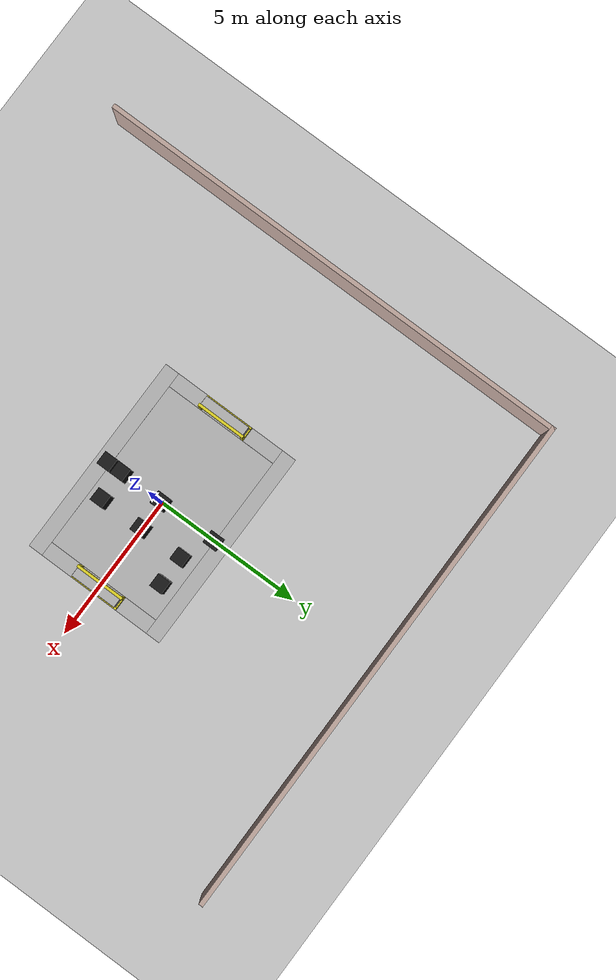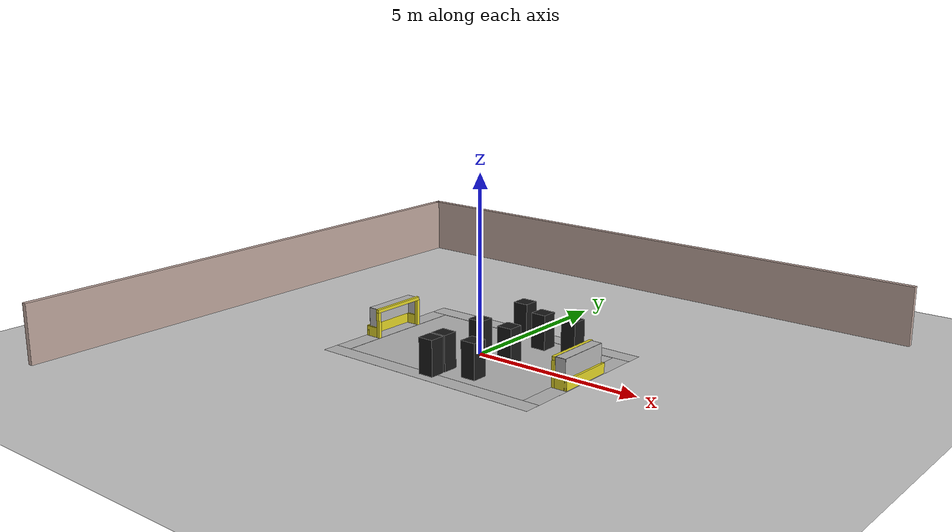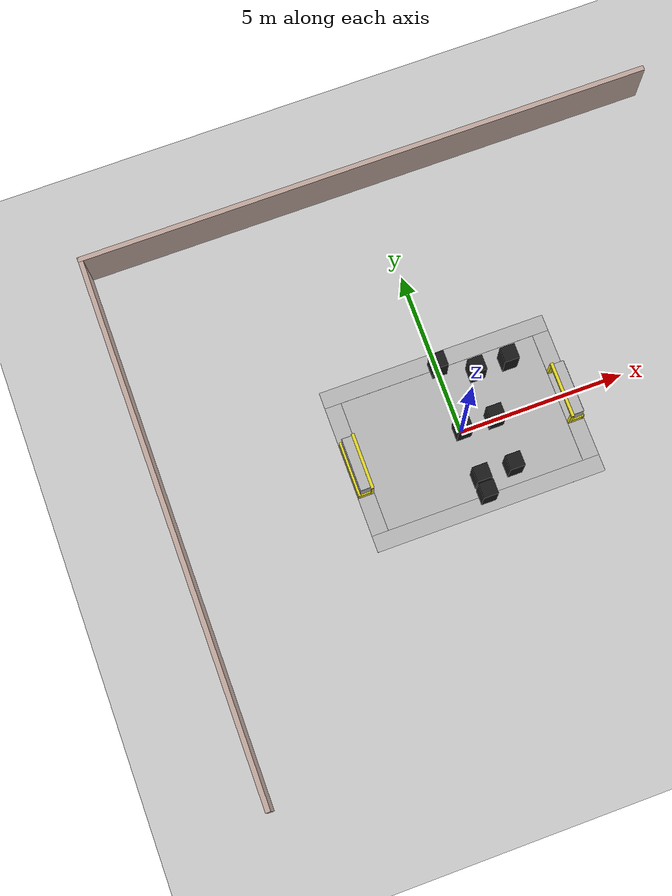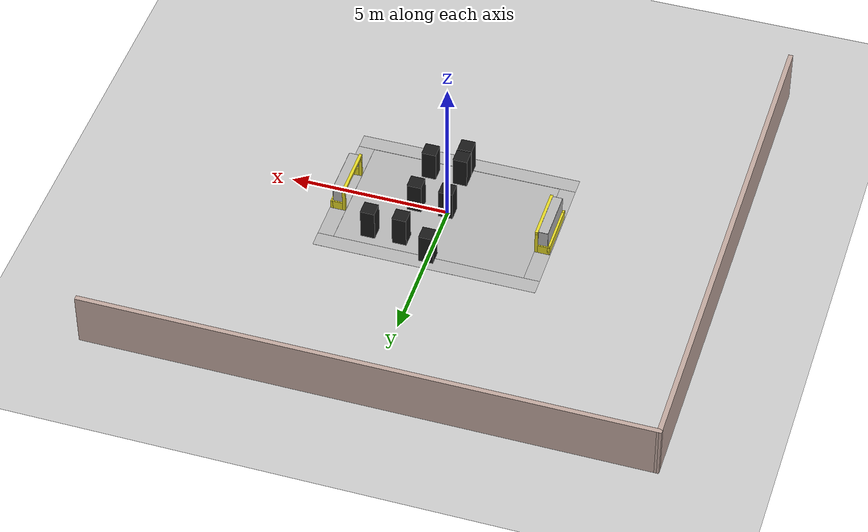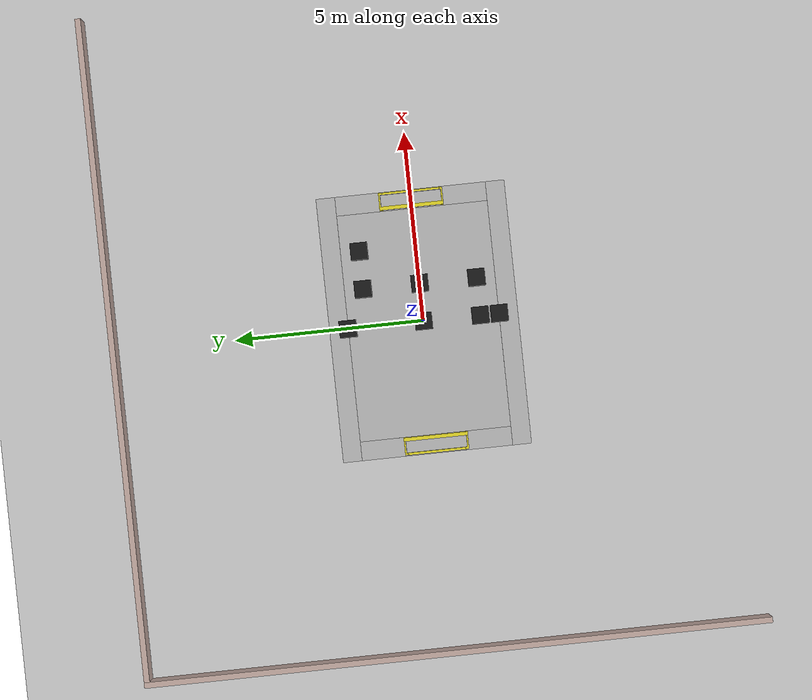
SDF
<?xml version="1.0" ?>
<sdf version='1.5'>
  <world name='RoboCup15MSL'>
<!-- scene -->
    <scene>
      <ambient>0.4 0.4 0.4 1</ambient>
      <background>0.7 0.7 0.7 1</background>
      <shadows>0</shadows>
    </scene>

<!-- spherical_coordinates -->
    <spherical_coordinates>
      <surface_model>EARTH_WGS84</surface_model>
      <latitude_deg>0</latitude_deg>
      <longitude_deg>0</longitude_deg>
      <elevation>0</elevation>
      <heading_deg>0</heading_deg>
    </spherical_coordinates>

<!-- lighting -->
 <light type="directional" name="sun">
    <cast_shadows>0</cast_shadows>

    <pose>0 0 10 0 0 0</pose>
    <diffuse>0.8 0.8 0.8 1</diffuse>
    <specular>0.2 0.2 0.2 1</specular>

    <attenuation>
      <range>1000</range>
      <constant>0.9</constant>
      <linear>0.01</linear>
      <quadratic>0.001</quadratic>
    </attenuation>

    <direction>-0.5 0.1 -0.9</direction>
  </light>

<!-- gui -->
    <gui fullscreen='0'>
      <camera name='user_camera'>
        <pose>0 -16 10 0 0.53 1.57</pose>
        <view_controller>orbit</view_controller>
      </camera>
    </gui>

<!-- physics -->
     <physics type='ode'>
      <max_step_size>0.015</max_step_size>
      <real_time_update_rate>67</real_time_update_rate>
      <gravity>0 0 -9.8</gravity>
    </physics>

<!-- The same as model://ground_plane -->
    <model name='ground_plane'>
      <static>true</static>
      <link name='link'>//
        <collision name='collision'>
          <geometry>
            <plane>
              <normal>0 0 1</normal>
              <size>100 100</size>
            </plane>
          </geometry>
          <surface>
            <friction>
              <ode>
                <mu>100</mu>
                <mu2>50</mu2>
              </ode>
            </friction>
            <contact>
              <ode/>
            </contact>
            <bounce/>
          </surface>
          <max_contacts>10</max_contacts>
        </collision>
        <visual name='visual'>
          <cast_shadows>0</cast_shadows>
          <geometry>
            <plane>
              <normal>0 0 1</normal>
              <size>100 100</size>
            </plane>
          </geometry>
          <material>
            <script>
              <uri>file://media/materials/scripts/gazebo.material</uri>
              <name>Gazebo/Grey</name>
            </script>
          </material>
        </visual>
        <velocity_decay>
          <linear>0</linear>
          <angular>0</angular>
        </velocity_decay>
        <self_collide>0</self_collide>
        <kinematic>0</kinematic>
        <gravity>1</gravity>
      </link>
    </model>

<!-- RoboCup 2015 MSL Field -->
    <include>
        <pose>0 0 0 0 0 0</pose>
        <uri>model://FIRA_Field</uri>
        <name>field</name>
        <static>true</static>
    </include>

<!-- RoboCup 2015 MSL Goal left -->
    <include>
        <pose>-3.13 0 0.01 0 0 3.14 </pose>
        <uri>model://FIRA_Goal</uri>
        <name>left_goal</name>
        <static>true</static>
    </include>

<!-- RoboCup 2015 MSL Goal right -->
    <include>
        <pose>3.13 0 0.01 0 0 0 </pose>
        <uri>model://FIRA_Goal</uri>
        <name>right_goal</name>
        <static>true</static>
    </include>
<!-- FIRA Wall -->
    <include>
        <pose>0 0 -0.8 0 0 0 </pose>
        <uri>model://wall</uri>
        <name>wall</name>
        <static>true</static>
    </include>
<!-- FIRA Obstacle -->
    <include>
      <pose>0 0 0.01 0 0 0 </pose>
      <uri>model://FIRA_Obstacle</uri>
      <name>obstacle_1</name>
      <static>false</static>
    </include>

    <include>
      <pose>2.0 1.5 0.01 0 0 0 </pose>
      <uri>model://FIRA_Obstacle</uri>
      <name>obstacle_2</name>
      <static>false</static>
    </include>

    <include>
      <pose>0 -1.5 0.01 0 0 0 </pose>
      <uri>model://FIRA_Obstacle</uri>
      <name>obstacle_3</name>
      <static>false</static>
    </include>

    <include>
      <pose>0 2.0 0.01 0 0 0 </pose>
      <uri>model://FIRA_Obstacle</uri>
      <name>obstacle_4</name>
      <static>false</static>
    </include>

    <include>
      <pose>0 -2.0 0.01 0 0 0 </pose>
      <uri>model://FIRA_Obstacle</uri>
      <name>obstacle_5</name>
      <static>false</static>
    </include>

    <include>
      <pose>1.0 0.0 0.01 0 0 0 </pose>
      <uri>model://FIRA_Obstacle</uri>
      <name>obstacle_6</name>
      <static>false</static>
    </include>

    <include>
      <pose>1.0 1.5 0.01 0 0 0 </pose>
      <uri>model://FIRA_Obstacle</uri>
      <name>obstacle_7</name>
      <static>false</static>
    </include>

    <include>
      <pose>1.0 -1.5 0.01 0 0 0 </pose>
      <uri>model://FIRA_Obstacle</uri>
      <name>obstacle_8</name>
      <static>false</static>
    </include>

    <!-- goal -->
    <include>
        <uri>model://avoid_goal</uri>
    </include>
  </world>
</sdf>

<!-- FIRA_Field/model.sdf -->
<sdf version="1.4">
  <model name="FIRA_Field">
    <static>true</static>

    <link name="chassis">
      <pose>0 0 0.01 0 0 0</pose>
      <collision name="collision">
        <geometry>
          <plane>
            <normal>0 0 1</normal>
            <size>6 4</size>
          </plane>
        </geometry>
        <surface>
          <friction>
            <ode>
              <mu>100</mu>
              <mu2>50</mu2>
            </ode>
          </friction>
        </surface>
      </collision>

      <visual name="carpet">
        <cast_shadows>false</cast_shadows>
        <geometry>
          <plane>
            <normal>0 0 1</normal>
            <size>6 4</size>
          </plane>
        </geometry>
        <material>
          <script>
            <uri>file://materials/scripts/</uri>
            <uri>file://materials/textures/</uri>
            <name>RoboCup/Carpet</name>
          </script>
        </material>
      </visual>

       <visual name="base1">
        <pose>0 2.25 0.01 0 0 0</pose>
        <cast_shadows>false</cast_shadows>
        <geometry>
          <plane>
            <normal>0 0 1</normal>
            <size>7.0 0.5</size>
          </plane>
        </geometry>
        <material>
          <script>
            <uri>file://materials/scripts/</uri>
            <uri>file://materials/textures/</uri>
            <name>RoboCup/FieldBorder</name>
          </script>
        </material>
      </visual>
      <visual name="base2">
        <pose>0 -2.25 0.01 0 0 0</pose>
        <cast_shadows>false</cast_shadows>
        <geometry>
          <plane>
            <normal>0 0 1</normal>
            <size>7.0 0.5</size>
          </plane>
        </geometry>
        <material>
          <script>
            <uri>file://materials/scripts/</uri>
            <uri>file://materials/textures/</uri>
            <name>RoboCup/FieldBorder</name>
          </script>
        </material>
      </visual>
      <visual name="base3">
        <pose>3.25 0 0.01 0 0 0</pose>
        <cast_shadows>false</cast_shadows>
        <geometry>
          <plane>
            <normal>0 0 1</normal>
            <size>0.5 4.0</size>
          </plane>
        </geometry>
        <material>
          <script>
            <uri>file://materials/scripts/</uri>
            <uri>file://materials/textures/</uri>
            <name>RoboCup/FieldBorder</name>
          </script>
        </material>
      </visual>
      <visual name="base4">
        <pose>-3.25 0 0.01 0 0 0</pose>
        <cast_shadows>false</cast_shadows>
        <geometry>
          <plane>
            <normal>0 0 1</normal>
            <size>0.5 4.0</size>
          </plane>
        </geometry>
        <material>
          <script>
            <uri>file://materials/scripts/</uri>
            <uri>file://materials/textures/</uri>
            <name>RoboCup/FieldBorder</name>
          </script>
        </material>
      </visual>
    </link>

  </model>
</sdf>

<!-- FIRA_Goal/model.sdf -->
<sdf version="1.4">
  <model name="FIRA_Goal">
    <static>true</static>

    <link name="left_post">
      <pose>-0.078125 0.796875 0.375 0 0 0</pose>
      <collision name="left_post_collision">
        <geometry>
          <box><size>0.09375 0.09375 0.75</size></box>
        </geometry>
      </collision>
      <visual name="visual">
        <geometry>
          <box><size>0.09375 0.09375 0.75</size></box>
        </geometry>
        <material>
          <script>
            <uri>file://media/materials/scripts/gazebo.material</uri>
            <name>Gazebo/Yellow</name>
          </script>
        </material>
      </visual>
      <sensor name="RFsrRL" type="contact">
        <always_on>1</always_on>
        <update_rate>20</update_rate>
        <visualize>true</visualize>
        <contact>
            <collision>left_post_collision</collision>
        </contact>
        <plugin name="gazebo_ros_bumper_ controller" filename="libgazebo_ros_bumper.so">
            <alwaysOn>true</alwaysOn>
            <updateRate>20</updateRate>
            <bumperTopicName>bumper</bumperTopicName>
            <frameName>symbol</frameName>
        </plugin>
      </sensor>
    </link>

    <link name="right_post">
      <pose>-0.078125 -0.796875 0.375 0 0 0</pose>
      <collision name="right_post_collision">
        <geometry>
          <box><size>0.09375 0.09375 0.75</size></box>
        </geometry>
      </collision>
      <visual name="visual">
        <geometry>
          <box><size>0.09375 0.09375 0.75</size></box>
        </geometry>
        <material>
          <script>
            <uri>file://media/materials/scripts/gazebo.material</uri>
            <name>Gazebo/Yellow</name>
          </script>
        </material>
      </visual>
      <sensor name="RFsrRL" type="contact">
        <always_on>1</always_on>
        <update_rate>20</update_rate>
        <visualize>true</visualize>
        <contact>
            <collision>right_post_collision</collision>
        </contact>
        <plugin name="gazebo_ros_bumper_ controller" filename="libgazebo_ros_bumper.so">
            <alwaysOn>true</alwaysOn>
            <updateRate>20</updateRate>
            <bumperTopicName>bumper</bumperTopicName>
            <frameName>symbol</frameName>
        </plugin>
      </sensor>
    </link>

    <link name="crossbar">
      <pose>-0.078125 0 0.796875 0 0 0</pose>
      <collision name="crossbar_collision">
        <geometry>
          <box><size>0.09375 1.6875 0.09375</size></box>
        </geometry>
      </collision>
      <visual name="visual">
        <geometry>
          <box><size>0.09375 1.6875 0.09375</size></box>
        </geometry>
        <material>
          <script>
            <uri>file://media/materials/scripts/gazebo.material</uri>
            <name>Gazebo/Yellow</name>
          </script>
        </material>
      </visual>
      <sensor name="RFsrRL" type="contact">
        <always_on>1</always_on>
        <update_rate>20</update_rate>
        <visualize>true</visualize>
        <contact>
            <collision>crossbar_collision</collision>
        </contact>
        <plugin name="gazebo_ros_bumper_ controller" filename="libgazebo_ros_bumper.so">
            <alwaysOn>true</alwaysOn>
            <updateRate>20</updateRate>
            <bumperTopicName>bumper</bumperTopicName>
            <frameName>symbol</frameName>
        </plugin>
      </sensor>
    </link>

    <link name="left_support_horiz_lower">
      <pose>0.15625 0.796875 0.15 0 0 0</pose>
      <collision name="left_support_horiz_lower_collision">
        <geometry>
          <box><size>0.375 0.09375 0.3</size></box>
        </geometry>
      </collision>
      <visual name="visual">
        <geometry>
          <box><size>0.375 0.09375 0.3</size></box>
        </geometry>
        <material>
          <script>
            <uri>file://media/materials/scripts/gazebo.material</uri>
            <name>Gazebo/Yellow</name>
          </script>
        </material>
      </visual>
      <sensor name="RFsrRL" type="contact">
        <always_on>1</always_on>
        <update_rate>20</update_rate>
        <visualize>true</visualize>
        <contact>
            <collision>left_support_horiz_lower_collision</collision>
        </contact>
        <plugin name="gazebo_ros_bumper_ controller" filename="libgazebo_ros_bumper.so">
            <alwaysOn>true</alwaysOn>
            <updateRate>20</updateRate>
            <bumperTopicName>bumper</bumperTopicName>
            <frameName>symbol</frameName>
        </plugin>
      </sensor>
    </link>

    <link name="right_support_horiz_lower">
      <pose>0.15625 -0.796875 0.15 0 0 0</pose>
      <collision name="right_support_horiz_lower_collision">
        <geometry>
          <box><size>0.375 0.09375 0.3</size></box>
        </geometry>
      </collision>
      <visual name="visual">
        <geometry>
          <box><size>0.375 0.09375 0.3</size></box>
        </geometry>
        <material>
          <script>
            <uri>file://media/materials/scripts/gazebo.material</uri>
            <name>Gazebo/Yellow</name>
          </script>
        </material>
      </visual>
      <sensor name="RFsrRL" type="contact">
        <always_on>1</always_on>
        <update_rate>20</update_rate>
        <visualize>true</visualize>
        <contact>
            <collision>right_support_horiz_lower_collision</collision>
        </contact>
        <plugin name="gazebo_ros_bumper_ controller" filename="libgazebo_ros_bumper.so">
            <alwaysOn>true</alwaysOn>
            <updateRate>20</updateRate>
            <bumperTopicName>bumper</bumperTopicName>
            <frameName>symbol</frameName>
        </plugin>
      </sensor>
    </link>

        <link name="center_support_horiz_lower">
      <pose>0.309375 0 0.15 0 0 0</pose>
      <collision name="center_support_horiz_lower_collision">
        <geometry>
          <box><size>0.075 1.6875 0.3</size></box>
        </geometry>
      </collision>
      <visual name="visual">
        <geometry>
        <box><size>0.075 1.6875 0.3</size></box>
        </geometry>
        <material>
          <script>
            <uri>file://media/materials/scripts/gazebo.material</uri>
            <name>Gazebo/Yellow</name>
          </script>
        </material>
      </visual>
      <sensor name="RFsrRL" type="contact">
        <always_on>1</always_on>
        <update_rate>20</update_rate>
        <visualize>true</visualize>
        <contact>
            <collision>center_support_horiz_lower_collision</collision>
        </contact>
        <plugin name="gazebo_ros_bumper_ controller" filename="libgazebo_ros_bumper.so">
            <alwaysOn>true</alwaysOn>
            <updateRate>20</updateRate>
            <bumperTopicName>bumper</bumperTopicName>
            <frameName>symbol</frameName>
        </plugin>
      </sensor>
    </link>

    <link name="center_net">
      <pose>0.271875 0 0.561875 0 0 0</pose>
      <visual name="visual">
        <geometry>
          <box><size>0.01 1.59375 0.54375</size></box>
        </geometry>
        <material>
          <script>
            <uri>file://materials/scripts/</uri>
            <uri>file://materials/textures/</uri>
            <name>RoboCup/Net</name>
          </script>
        </material>
      </visual>
    </link>

    <link name="left_net">
      <pose>0.08125 0.796875 0.561875 0 0 0</pose>
      <visual name="visual">
        <geometry>
          <box>
            <size>0.375 0.01 0.54375</size>
          </box>
        </geometry>
        <material>
          <script>
            <uri>file://materials/scripts/</uri>
            <uri>file://materials/textures/</uri>
            <name>RoboCup/Net</name>
          </script>
        </material>
      </visual>
    </link>

    <link name="right_net">
      <pose>0.08125 -0.796875 0.561875 0 0 0</pose>
      <visual name="visual">
        <geometry>
          <box>
            <size>0.375 0.01 0.54375</size>
          </box>
        </geometry>
        <material>
          <script>
            <uri>file://materials/scripts/</uri>
            <uri>file://materials/textures/</uri>
            <name>RoboCup/Net</name>
          </script>
        </material>
      </visual>
    </link>

    <link name='upper_net'>
      <pose>0.08125 0 0.83375 0 0 0</pose>
      <visual name='visual'>
        <geometry>
          <box><size>0.375 1.59375 0.01</size></box>
        </geometry>
        <material>
          <script>
            <uri>file://materials/scripts/</uri>
            <uri>file://materials/textures/</uri>
            <name>RoboCup/Net</name>
          </script>
        </material>
      </visual>
    </link>

  </model>
</sdf>

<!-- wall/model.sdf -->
<sdf version='1.6'>
  <model name='wall'>
    <pose frame=''>-1.26581 1.80502 0 0 -0 0</pose>
    <link name='Wall_0'>
      <collision name='Wall_0_Collision'>
        <geometry>
          <box>
            <size>16.5 0.15 2.5</size>
          </box>
        </geometry>
        <pose frame=''>0 0 1.25 0 -0 0</pose>
      </collision>
      <visual name='Wall_0_Visual'>
        <pose frame=''>0 0 1.25 0 -0 0</pose>
        <geometry>
          <box>
            <size>16.5 0.15 2.5</size>
          </box>
        </geometry>
        <material>
          <script>
            <uri>file://media/materials/scripts/gazebo.material</uri>
            <name>Gazebo/Grey</name>
          </script>
          <ambient>0.760784 0.662745 0.627451 1</ambient>
        </material>
        <meta>
          <layer>0</layer>
        </meta>
      </visual>
      <pose frame=''>-8.71419 -1.8e-05 0 0 0 -1.5708</pose>
    </link>
    <link name='Wall_2'>
      <collision name='Wall_2_Collision'>
        <geometry>
          <box>
            <size>17.5784 0.15 2.5</size>
          </box>
        </geometry>
        <pose frame=''>0 0 1.25 0 -0 0</pose>
      </collision>
      <visual name='Wall_2_Visual'>
        <pose frame=''>0 0 1.25 0 -0 0</pose>
        <geometry>
          <box>
            <size>17.5784 0.15 2.5</size>
          </box>
        </geometry>
        <material>
          <script>
            <uri>file://media/materials/scripts/gazebo.material</uri>
            <name>Gazebo/Grey</name>
          </script>
          <ambient>0.760784 0.662745 0.627451 1</ambient>
        </material>
        <meta>
          <layer>0</layer>
        </meta>
      </visual>
      <pose frame=''>0 8.17066 0 0 0 -0.000496</pose>
    </link>
    <static>1</static>
  </model>
</sdf>

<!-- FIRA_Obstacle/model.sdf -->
<sdf version="1.4">
   <model name="avoid_goal">
      <link name="base">
         <pose>0.0 0.0 0.51 0 0 0</pose>

         <inertial>
            <mass>31</mass>
            <pose>0 0 0 0 0 0</pose>
            <inertia>
               <ixx>100</ixx>
               <ixy>0</ixy>
               <ixz>0</ixz>
               <iyy>100</iyy>
               <iyz>0</iyz>
               <izz>2.86</izz>
            </inertia>
         </inertial>

         <collision name="box_collision">
            <geometry>
               <box>
                  <size>.45 .45 1.0</size>
               </box>
            </geometry>
            <surface>
               <bounce>
                  <restitution_coefficient>0</restitution_coefficient>
               </bounce>
               <friction>
                  <ode>
                     <mu>0.1</mu>
                     <mu2>0.1</mu2>
                  </ode>
               </friction>
            </surface>
         </collision>

         <visual name="visual">
            <geometry>
               <box>
                  <size>.45 .45 1.0</size>
               </box>
            </geometry>

            <material> <!-- Wheel material -->
               <ambient>0.1 0.1 0.1 1</ambient>
               <diffuse>0.1 0.1 0.1 1</diffuse>
               <specular>0 0 0 0</specular>
               <emissive>0 0 0 1</emissive>
            </material> <!-- End wheel material -->
         </visual>

         <velocity_decay>
            <linear>0</linear>
            <angular>0</angular>
         </velocity_decay>
         <self_collide>0</self_collide>
         <gravity>1</gravity>

         <sensor name="RFsrRL" type="contact">
            <always_on>1</always_on>
            <update_rate>20</update_rate>
            <visualize>true</visualize>
            <contact>
               <collision>box_collision</collision>
            </contact>
            <plugin name="gazebo_ros_bumper_ controller" filename="libgazebo_ros_bumper.so">
               <alwaysOn>true</alwaysOn>
               <updateRate>20</updateRate>
               <bumperTopicName>bumper</bumperTopicName>
               <frameName>symbol</frameName>
            </plugin>
         </sensor>
      </link>

      <plugin name="nubot_gazebo" filename="libnubot_gazebo.so" />
   </model>
</sdf>

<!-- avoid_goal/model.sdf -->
<sdf version="1.4">
   <!-- mass 0.41  -->
   <!-- inertia 3.2e-03 -->
   <model name="avoid_goal">
      <static>true</static>
      <link name="base">
         <pose>0.0 0.0 -0.09 0 0 0</pose>

         <collision name="box_collision">
            <geometry>
               <box>
                  <size>0.44 0.44 0.01</size>
               </box>
            </geometry>
         </collision>

         <visual name="visual">
            <geometry>
               <box>
                  <size>0.44 0.44 0.01</size>
               </box>
            </geometry>

            <material> <!-- Wheel material -->
               <ambient>0.1 0.1 0.1 1</ambient>
               <diffuse>255 0 43 1</diffuse>
               <specular>0 0 0 0</specular>
               <emissive>0 0 0 1</emissive>
            </material> <!-- End wheel material -->
         </visual>

      </link>

      <joint name="fixed_joint" type="fixed">
         <parent>world</parent>
         <child>base</child>
         <pose>0 0.0 0 0 0 0</pose>
         <axis>
            <xyz>0 0 1</xyz>
         </axis>
      </joint>
   </model>
</sdf>
